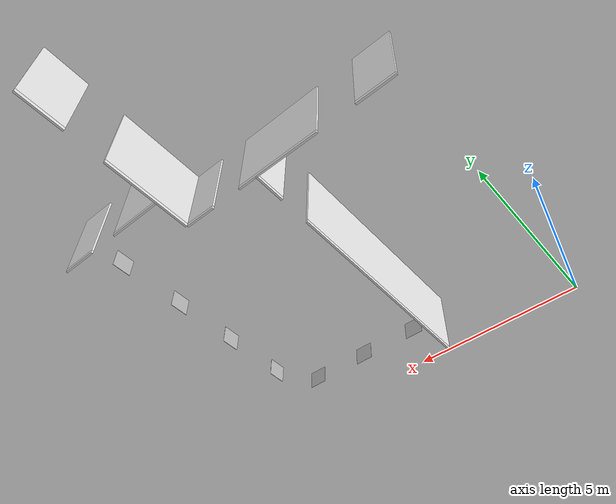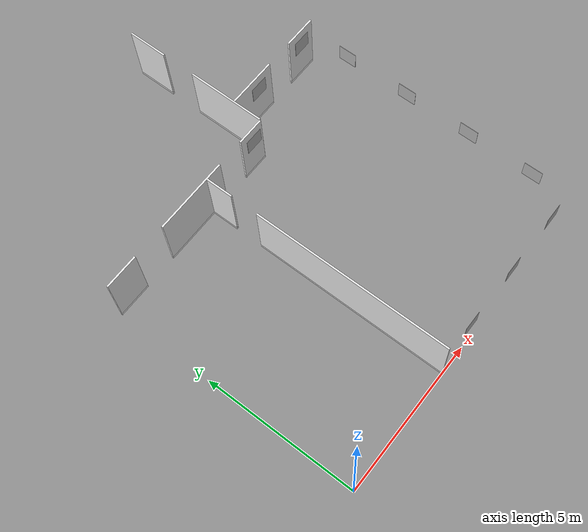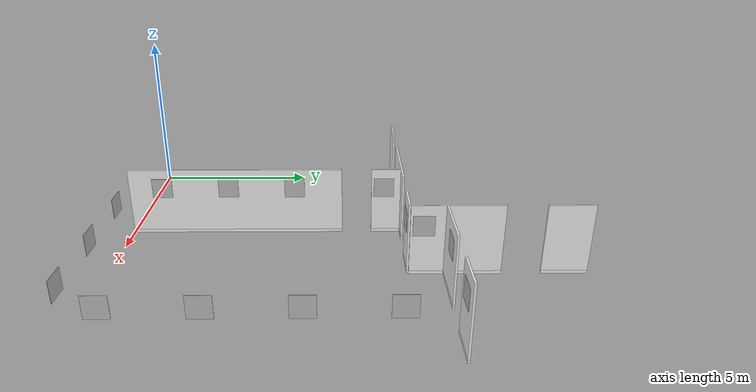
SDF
<?xml version="1.0" ?>
<sdf version="1.4">
    <model name='full_inside_wall'>
      <link name='link'>
        <inertial>
          <mass>50</mass>
          <inertia>
            <ixx>1</ixx>
            <ixy>0</ixy>
            <ixz>0</ixz>
            <iyy>1</iyy>
            <iyz>0</iyz>
            <izz>1</izz>
          </inertia>
        </inertial>
        <visual name='x05y01_08_bottom_frame'>
          <pose>4.075 3.215 0.05 0 0 0</pose>
          <geometry>
            <box>
              <size>0.055 6.43 0.1</size>
            </box>
          </geometry>
          <material>
            <script>
              <uri>model://base_materials/color/scripts</uri>
              <name>hsr_color/white</name>
            </script>
          </material>
        </visual>
        <collision name='x05y01_08_collision_bottom_frame'>
          <pose>4.075 3.215 0.05 0 0 0</pose>
          <geometry>
            <box>
              <size>0.055 6.43 0.1</size>
            </box>
          </geometry>
          <max_contacts>10</max_contacts>
          <surface>
            <bounce/>
            <friction>
              <ode/>
            </friction>
            <contact>
              <ode/>
            </contact>
          </surface>
        </collision>
        <visual name='x05y01_08_wall'>
          <pose>4.075 3.215 1.095 0 0 0</pose>
          <geometry>
            <box>
              <size>0.055 6.43 1.99</size>
            </box>
          </geometry>
          <material>
            <script>
              <uri>model://base_materials/wall/scripts</uri>
              <uri>model://base_materials/wall/textures</uri>
              <name>wall/white_noise</name>
            </script>
          </material>
        </visual>
        <collision name='x05y01_08_collision_wall'>
          <pose>4.075 3.2150 1.095 0 0 0</pose>
          <geometry>
            <box>
              <size>0.055 6.43 1.99</size>
            </box>
          </geometry>
          <max_contacts>10</max_contacts>
          <surface>
            <bounce/>
            <friction>
              <ode/>
            </friction>
            <contact>
              <ode/>
            </contact>
          </surface>
        </collision>
        <visual name='x05y10_bottom_frame'>
          <pose>4.075 7.78 0.05 0 0 0</pose>
          <geometry>
            <box>
              <size>0.055 0.9 0.1</size>
            </box>
          </geometry>
          <material>
            <script>
              <uri>model://base_materials/color/scripts</uri>
              <name>hsr_color/white</name>
            </script>
          </material>
        </visual>
        <collision name='x05y10_collision_bottom_frame'>
          <pose>4.075 7.78 0.05 0 0 0</pose>
          <geometry>
            <box>
              <size>0.055 0.9 0.1</size>
            </box>
          </geometry>
          <max_contacts>10</max_contacts>
          <surface>
            <bounce/>
            <friction>
              <ode/>
            </friction>
            <contact>
              <ode/>
            </contact>
          </surface>
        </collision>
        <visual name='x05y10_wall'>
          <pose>4.075 7.78 1.095 0 0 0</pose>
          <geometry>
            <box>
              <size>0.055 0.9 1.99</size>
            </box>
          </geometry>
          <material>
            <script>
              <uri>model://base_materials/wall/scripts</uri>
              <uri>model://base_materials/wall/textures</uri>
              <name>wall/white_noise</name>
            </script>
          </material>
        </visual>
        <collision name='x05y10_collision_wall'>
          <pose>4.075 7.78 1.095 0 0 0</pose>
          <geometry>
            <box>
              <size>0.055 0.9 1.99</size>
            </box>
          </geometry>
          <max_contacts>10</max_contacts>
          <surface>
            <bounce/>
            <friction>
              <ode/>
            </friction>
            <contact>
              <ode/>
            </contact>
          </surface>
        </collision>

        <visual name='x01_02_y09_bottom_frame'>
          <pose>0.55 8.23 0.05 0 0 1.5708</pose>
          <geometry>
            <box>
              <size>0.055 1.1 0.1</size>
            </box>
          </geometry>
          <material>
            <script>
              <uri>model://base_materials/color/scripts</uri>
              <name>hsr_color/white</name>
            </script>
          </material>
        </visual>
        <collision name='x01_02_y09_collision_bottom_frame'>
          <pose>0.55 8.23 0.05 0 0 1.5708</pose>
          <geometry>
            <box>
              <size>0.055 1.1 0.1</size>
            </box>
          </geometry>
          <max_contacts>10</max_contacts>
          <surface>
            <bounce/>
            <friction>
              <ode/>
            </friction>
            <contact>
              <ode/>
            </contact>
          </surface>
        </collision>
        <visual name='x01_02_y09_wall'>
          <pose>0.55 8.23 1.095 0 0 1.5708</pose>
          <geometry>
            <box>
              <size>0.055 1.1 1.99</size>
            </box>
          </geometry>
          <material>
            <script>
              <uri>model://base_materials/wall/scripts</uri>
              <uri>model://base_materials/wall/textures</uri>
              <name>wall/white_noise</name>
            </script>
          </material>
        </visual>
        <collision name='x01_02_y09_collision_wall'>
          <pose>0.55 8.23 1.095 0 0 1.5708</pose>
          <geometry>
            <box>
              <size>0.055 1.1 1.99</size>
            </box>
          </geometry>
          <max_contacts>10</max_contacts>
          <surface>
            <bounce/>
            <friction>
              <ode/>
            </friction>
            <contact>
              <ode/>
            </contact>
          </surface>
        </collision>
        <visual name='x04_07_y09_bottom_frame'>
          <pose>3.42 8.23 0.05 0 0 1.5708</pose>
          <geometry>
            <box>
              <size>0.055 2.44 0.1</size>
            </box>
          </geometry>
          <material>
            <script>
              <uri>model://base_materials/color/scripts</uri>
              <name>hsr_color/white</name>
            </script>
          </material>
        </visual>
        <collision name='x04_07_y09_collision_bottom_frame'>
          <pose>3.42 8.23 0.05 0 0 1.5708</pose>
          <geometry>
            <box>
              <size>0.055 2.44 0.1</size>
            </box>
          </geometry>
          <max_contacts>10</max_contacts>
          <surface>
            <bounce/>
            <friction>
              <ode/>
            </friction>
            <contact>
              <ode/>
            </contact>
          </surface>
        </collision>
        <visual name='x04_07_y09_wall'>
          <pose>3.42 8.23 1.095 0 0 1.5708</pose>
          <geometry>
            <box>
              <size>0.055 2.44 1.99</size>
            </box>
          </geometry>
          <material>
            <script>
              <uri>model://base_materials/wall/scripts</uri>
              <uri>model://base_materials/wall/textures</uri>
              <name>wall/white_noise</name>
            </script>
          </material>
        </visual>
        <collision name='x04_07_y09_collision_wall'>
          <pose>3.42 8.23 1.095 0 0 1.5708</pose>
          <geometry>
            <box>
              <size>0.055 2.44 1.99</size>
            </box>
          </geometry>
          <max_contacts>10</max_contacts>
          <surface>
            <bounce/>
            <friction>
              <ode/>
            </friction>
            <contact>
              <ode/>
            </contact>
          </surface>
        </collision>
        <visual name='x08y10a_bottom_frame'>
          <pose>5.9925 8.23 0.05 0 0 1.5708</pose>
          <geometry>
            <box>
              <size>0.055 0.9 0.1</size>
            </box>
          </geometry>
          <material>
            <script>
              <uri>model://base_materials/color/scripts</uri>
              <name>hsr_color/white</name>
            </script>
          </material>
        </visual>
        <collision name='x08y10a_collision_bottom_frame'>
          <pose>5.9925 8.23 0.05 0 0 1.5708</pose>
          <geometry>
            <box>
              <size>0.055 0.9 0.1</size>
            </box>
          </geometry>
          <max_contacts>10</max_contacts>
          <surface>
            <bounce/>
            <friction>
              <ode/>
            </friction>
            <contact>
              <ode/>
            </contact>
          </surface>
        </collision>
        <visual name='x08y10a_wall'>
          <pose>5.9925 8.23 1.095 0 0 1.5708</pose>
          <geometry>
            <box>
              <size>0.055 0.9 1.99</size>
            </box>
          </geometry>
          <material>
            <script>
              <uri>model://base_materials/wall/scripts</uri>
              <uri>model://base_materials/wall/textures</uri>
              <name>wall/white_noise</name>
            </script>
          </material>
        </visual>
        <collision name='x08y10a_collision_wall'>
          <pose>5.9925 8.23 1.095 0 0 1.5708</pose>
          <geometry>
            <box>
              <size>0.055 0.9 1.99</size>
            </box>
          </geometry>
          <max_contacts>10</max_contacts>
          <surface>
            <bounce/>
            <friction>
              <ode/>
            </friction>
            <contact>
              <ode/>
            </contact>
          </surface>
        </collision>
        <visual name='x08y10a_bottom_frame'>
          <pose>5.9925 8.23 0.05 0 0 1.5708</pose>
          <geometry>
            <box>
              <size>0.055 0.9 0.1</size>
            </box>
          </geometry>
          <material>
            <script>
              <uri>model://base_materials/color/scripts</uri>
              <name>hsr_color/white</name>
            </script>
          </material>
        </visual>
        <collision name='x08y10a_collision_bottom_frame'>
          <pose>5.9925 8.23 0.05 0 0 1.5708</pose>
          <geometry>
            <box>
              <size>0.055 0.9 0.1</size>
            </box>
          </geometry>
          <max_contacts>10</max_contacts>
          <surface>
            <bounce/>
            <friction>
              <ode/>
            </friction>
            <contact>
              <ode/>
            </contact>
          </surface>
        </collision>
        <visual name='x08y10a_wall'>
          <pose>5.9925 8.23 1.095 0 0 1.5708</pose>
          <geometry>
            <box>
              <size>0.055 0.9 1.99</size>
            </box>
          </geometry>
          <material>
            <script>
              <uri>model://base_materials/wall/scripts</uri>
              <uri>model://base_materials/wall/textures</uri>
              <name>wall/white_noise</name>
            </script>
          </material>
        </visual>
        <collision name='x08y10a_collision_wall'>
          <pose>5.9925 8.23 1.095 0 0 1.5708</pose>
          <geometry>
            <box>
              <size>0.055 0.9 1.99</size>
            </box>
          </geometry>
          <max_contacts>10</max_contacts>
          <surface>
            <bounce/>
            <friction>
              <ode/>
            </friction>
            <contact>
              <ode/>
            </contact>
          </surface>
        </collision>
        <visual name='x08y14_15_bottom_frame'>
          <pose>6.47 12.54 0.05 0 0 0</pose>
          <geometry>
            <box>
              <size>0.055 1.28 0.1</size>
            </box>
          </geometry>
          <material>
            <script>
              <uri>model://base_materials/color/scripts</uri>
              <name>hsr_color/white</name>
            </script>
          </material>
        </visual>
        <collision name='x08y14_15_collision_bottom_frame'>
          <pose>6.47 12.54 0.05 0 0 0</pose>
          <geometry>
            <box>
              <size>0.055 1.28 0.1</size>
            </box>
          </geometry>
          <max_contacts>10</max_contacts>
          <surface>
            <bounce/>
            <friction>
              <ode/>
            </friction>
            <contact>
              <ode/>
            </contact>
          </surface>
        </collision>
        <visual name='x08y14_15_wall'>
          <pose>6.47 12.54 1.095 0 0 0</pose>
          <geometry>
            <box>
              <size>0.055 1.28 1.99</size>
            </box>
          </geometry>
          <material>
            <script>
              <uri>model://base_materials/wall/scripts</uri>
              <uri>model://base_materials/wall/textures</uri>
              <name>wall/white_noise</name>
            </script>
          </material>
        </visual>
        <collision name='x08y14_15_collision_wall'>
          <pose>6.47 12.54 1.095 0 0 0</pose>
          <geometry>
            <box>
              <size>0.055 1.28 1.99</size>
            </box>
          </geometry>
          <max_contacts>10</max_contacts>
          <surface>
            <bounce/>
            <friction>
              <ode/>
            </friction>
            <contact>
              <ode/>
            </contact>
          </surface>
        </collision>
        <visual name='x08y10b_12_bottom_frame'>
          <pose>6.47 9.52875 0.05 0 0 0</pose>
          <geometry>
            <box>
              <size>0.055 2.5425 0.1</size>
            </box>
          </geometry>
          <material>
            <script>
              <uri>model://base_materials/color/scripts</uri>
              <name>hsr_color/white</name>
            </script>
          </material>
        </visual>
        <collision name='x08y10b_12_collision_bottom_frame'>
          <pose>6.47 9.52875 0.05 0 0 0</pose>
          <geometry>
            <box>
              <size>0.055 2.5425 0.1</size>
            </box>
          </geometry>
          <max_contacts>10</max_contacts>
          <surface>
            <bounce/>
            <friction>
              <ode/>
            </friction>
            <contact>
              <ode/>
            </contact>
          </surface>
        </collision>
        <visual name='x08y10b_12_wall'>
          <pose>6.47 9.52875 1.095 0 0 0</pose>
          <geometry>
            <box>
              <size>0.055 2.5425 1.99</size>
            </box>
          </geometry>
          <material>
            <script>
              <uri>model://base_materials/wall/scripts</uri>
              <uri>model://base_materials/wall/textures</uri>
              <name>wall/white_noise</name>
            </script>
          </material>
        </visual>
        <collision name='x08y10b_12_collision_wall'>
          <pose>6.47 9.52875 1.095 0 0 0</pose>
          <geometry>
            <box>
              <size>0.055 2.5425 1.99</size>
            </box>
          </geometry>
          <max_contacts>10</max_contacts>
          <surface>
            <bounce/>
            <friction>
              <ode/>
            </friction>
            <contact>
              <ode/>
            </contact>
          </surface>
        </collision>
        <visual name='x08_09y11b_bottom_frame'>
          <pose>7.284 9.23 0.05 0 0 1.5708</pose>
          <geometry>
            <box>
              <size>0.055 1.632 0.1</size>
            </box>
          </geometry>
          <material>
            <script>
              <uri>model://base_materials/color/scripts</uri>
              <name>hsr_color/white</name>
            </script>
          </material>
        </visual>
        <collision name='x08_09y11b_collision_bottom_frame'>
          <pose>7.284 9.23 0.05 0 0 1.5708</pose>
          <geometry>
            <box>
              <size>0.055 1.632 0.1</size>
            </box>
          </geometry>
          <max_contacts>10</max_contacts>
          <surface>
            <bounce/>
            <friction>
              <ode/>
            </friction>
            <contact>
              <ode/>
            </contact>
          </surface>
        </collision>
        <visual name='x08_09y11b_wall'>
          <pose>7.284 9.23 1.095 0 0 1.5708</pose>
          <geometry>
            <box>
              <size>0.055 1.632 1.99</size>
            </box>
          </geometry>
          <material>
            <script>
              <uri>model://base_materials/wall/scripts</uri>
              <uri>model://base_materials/wall/textures</uri>
              <name>wall/white_noise</name>
            </script>
          </material>
        </visual>
        <collision name='x08_09y11b_collision_wall'>
          <pose>7.284 9.23 1.095 0 0 1.5708</pose>
          <geometry>
            <box>
              <size>0.055 1.632 1.99</size>
            </box>
          </geometry>
          <max_contacts>10</max_contacts>
          <surface>
            <bounce/>
            <friction>
              <ode/>
            </friction>
            <contact>
              <ode/>
            </contact>
          </surface>
        </collision>

        <visual name='x11_12y11_bottom_frame'>
          <pose>9.5375 9.23 0.05 0 0 1.5708</pose>
          <geometry>
            <box>
              <size>0.055 1.075 0.1</size>
            </box>
          </geometry>
          <material>
            <script>
              <uri>model://base_materials/color/scripts</uri>
              <name>hsr_color/white</name>
            </script>
          </material>
        </visual>
        <collision name='x11_12y11_collision_bottom_frame'>
          <pose>9.5375 9.23 0.05 0 0 1.5708</pose>
          <geometry>
            <box>
              <size>0.055 1.075 0.1</size>
            </box>
          </geometry>
          <max_contacts>10</max_contacts>
          <surface>
            <bounce/>
            <friction>
              <ode/>
            </friction>
            <contact>
              <ode/>
            </contact>
          </surface>
        </collision>
        <visual name='x11_12y11_wall'>
          <pose>9.5375 9.23 1.095 0 0 1.5708</pose>
          <geometry>
            <box>
              <size>0.055 1.075 1.99</size>
            </box>
          </geometry>
          <material>
            <script>
              <uri>model://base_materials/wall/scripts</uri>
              <uri>model://base_materials/wall/textures</uri>
              <name>wall/white_noise</name>
            </script>
          </material>
        </visual>
        <collision name='x11_12y11_collision_wall'>
          <pose>9.5375 9.23 1.095 0 0 1.5708</pose>
          <geometry>
            <box>
              <size>0.055 1.075 1.99</size>
            </box>
          </geometry>
          <max_contacts>10</max_contacts>
          <surface>
            <bounce/>
            <friction>
              <ode/>
            </friction>
            <contact>
              <ode/>
            </contact>
          </surface>
        </collision>

        <visual name='april_tag01'>
          <pose>4.11 1.0 1.5 0 0 0</pose>
          <geometry>
            <box>
              <size>0.01 0.6 0.6</size>
            </box>
          </geometry>
          <material>
            <script>
              <uri>model://april_tags/scripts</uri>
              <uri>model://april_tags/textures</uri>
              <name>april_tag/tag16h5_01</name>
            </script>
          </material>
        </visual>
        <visual name='april_tag02'>
          <pose>4.11 3.0 1.5 0 0 0</pose>
          <geometry>
            <box>
              <size>0.01 0.6 0.6</size>
            </box>
          </geometry>
          <material>
            <script>
              <uri>model://april_tags/scripts</uri>
              <uri>model://april_tags/textures</uri>
              <name>april_tag/tag16h5_02</name>
            </script>
          </material>
        </visual>
        <visual name='april_tag03'>
          <pose>4.11 5.0 1.5 0 0 0</pose>
          <geometry>
            <box>
              <size>0.01 0.6 0.6</size>
            </box>
          </geometry>
          <material>
            <script>
              <uri>model://april_tags/scripts</uri>
              <uri>model://april_tags/textures</uri>
              <name>april_tag/tag16h5_03</name>
            </script>
          </material>
        </visual>
        <visual name='april_tag04'>
          <pose>4.11 7.7 1.5 0 0 0</pose>
          <geometry>
            <box>
              <size>0.01 0.6 0.6</size>
            </box>
          </geometry>
          <material>
            <script>
              <uri>model://april_tags/scripts</uri>
              <uri>model://april_tags/textures</uri>
              <name>april_tag/tag16h5_04</name>
            </script>
          </material>
        </visual>
        <visual name='april_tag05'>
          <pose>6.05 8.18 1.5 0 0 0</pose>
          <geometry>
            <box>
              <size>0.6 0.01 0.6</size>
            </box>
          </geometry>
          <material>
            <script>
              <uri>model://april_tags/scripts</uri>
              <uri>model://april_tags/textures</uri>
              <name>april_tag/tag16h5_05</name>
            </script>
          </material>
        </visual>
        <visual name='april_tag06'>
          <pose>6.52 8.62 1.5 0 0 0</pose>
          <geometry>
            <box>
              <size>0.01 0.6 0.6</size>
            </box>
          </geometry>
          <material>
            <script>
              <uri>model://april_tags/scripts</uri>
              <uri>model://april_tags/textures</uri>
              <name>april_tag/tag16h5_06</name>
            </script>
          </material>
        </visual>
        <visual name='april_tag07'>
          <pose>7.51 9.18 1.5 0 0 0</pose>
          <geometry>
            <box>
              <size>0.6 0.01 0.6</size>
            </box>
          </geometry>
          <material>
            <script>
              <uri>model://april_tags/scripts</uri>
              <uri>model://april_tags/textures</uri>
              <name>april_tag/tag16h5_07</name>
            </script>
          </material>
        </visual>
        <visual name='april_tag08'>
          <pose>9.55 9.18 1.5 0 0 0</pose>
          <geometry>
            <box>
              <size>0.6 0.01 0.6</size>
            </box>
          </geometry>
          <material>
            <script>
              <uri>model://april_tags/scripts</uri>
              <uri>model://april_tags/textures</uri>
              <name>april_tag/tag16h5_08</name>
            </script>
          </material>
        </visual>
        <visual name='april_tag09'>
          <pose>10.03 1.2 1.5 0 0 0</pose>
          <geometry>
            <box>
              <size>0.01 0.6 0.6</size>
            </box>
          </geometry>
          <material>
            <script>
              <uri>model://april_tags/scripts</uri>
              <uri>model://april_tags/textures</uri>
              <name>april_tag/tag16h5_09</name>
            </script>
          </material>
        </visual>
        <visual name='april_tag10'>
          <pose>10.03 3.4 1.5 0 0 0</pose>
          <geometry>
            <box>
              <size>0.01 0.6 0.6</size>
            </box>
          </geometry>
          <material>
            <script>
              <uri>model://april_tags/scripts</uri>
              <uri>model://april_tags/textures</uri>
              <name>april_tag/tag16h5_10</name>
            </script>
          </material>
        </visual>
        <visual name='april_tag11'>
          <pose>10.03 5.6 1.5 0 0 0</pose>
          <geometry>
            <box>
              <size>0.01 0.6 0.6</size>
            </box>
          </geometry>
          <material>
            <script>
              <uri>model://april_tags/scripts</uri>
              <uri>model://april_tags/textures</uri>
              <name>april_tag/tag16h5_11</name>
            </script>
          </material>
        </visual>
        <visual name='april_tag12'>
          <pose>10.03 7.8 1.5 0 0 0</pose>
          <geometry>
            <box>
              <size>0.01 0.6 0.6</size>
            </box>
          </geometry>
          <material>
            <script>
              <uri>model://april_tags/scripts</uri>
              <uri>model://april_tags/textures</uri>
              <name>april_tag/tag16h5_12</name>
            </script>
          </material>
        </visual>
        <visual name='april_tag13'>
          <pose>5.2 0.0 1.5 0 0 0</pose>
          <geometry>
            <box>
              <size>0.6 0.01 0.6</size>
            </box>
          </geometry>
          <material>
            <script>
              <uri>model://april_tags/scripts</uri>
              <uri>model://april_tags/textures</uri>
              <name>april_tag/tag16h5_13</name>
            </script>
          </material>
        </visual>
        <visual name='april_tag14'>
          <pose>7.2 0.0 1.5 0 0 0</pose>
          <geometry>
            <box>
              <size>0.6 0.01 0.6</size>
            </box>
          </geometry>
          <material>
            <script>
              <uri>model://april_tags/scripts</uri>
              <uri>model://april_tags/textures</uri>
              <name>april_tag/tag16h5_14</name>
            </script>
          </material>
        </visual>
        <visual name='april_tag15'>
          <pose>9.2 0.0 1.5 0 0 0</pose>
          <geometry>
            <box>
              <size>0.6 0.01 0.6</size>
            </box>
          </geometry>
          <material>
            <script>
              <uri>model://april_tags/scripts</uri>
              <uri>model://april_tags/textures</uri>
              <name>april_tag/tag16h5_15</name>
            </script>
          </material>
        </visual>

        <velocity_decay>
          <linear>0</linear>
          <angular>0</angular>
        </velocity_decay>
        <self_collide>0</self_collide>
        <kinematic>0</kinematic>
        <gravity>1</gravity>
      </link>
      <static>1</static>
    </model>
</sdf>
